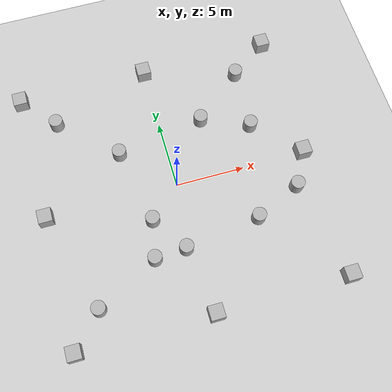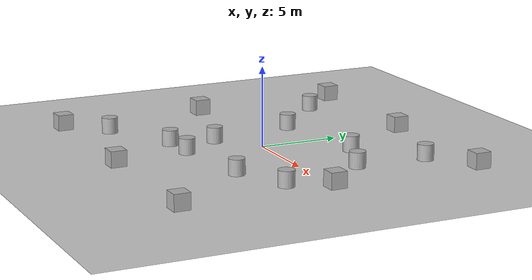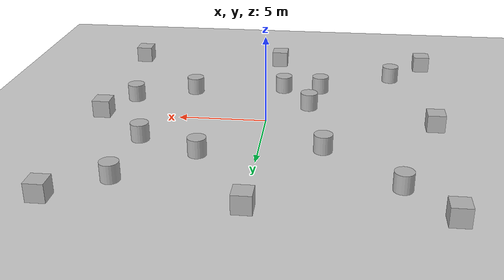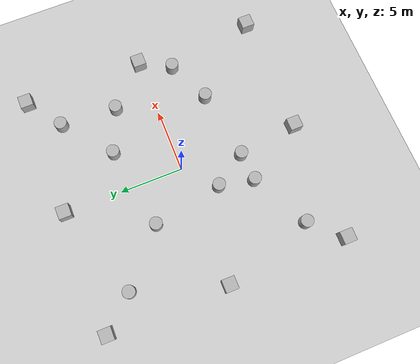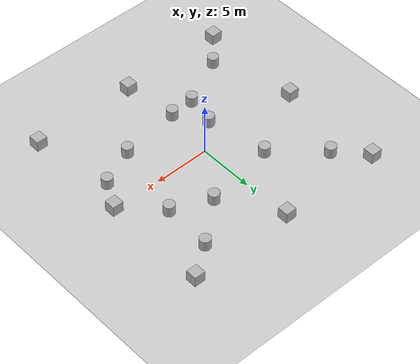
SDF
<sdf version='1.10'>
  <world name='empty'>
    <physics name='1ms' type='ignored'>
      <max_step_size>0.001</max_step_size>
      <real_time_factor>1</real_time_factor>
      <real_time_update_rate>1000</real_time_update_rate>
    </physics>
    <plugin name='gz::sim::systems::Physics' filename='gz-sim-physics-system'/>
    <plugin name='gz::sim::systems::UserCommands' filename='gz-sim-user-commands-system'/>
    <plugin name='gz::sim::systems::SceneBroadcaster' filename='gz-sim-scene-broadcaster-system'/>
    <plugin name='gz::sim::systems::Contact' filename='gz-sim-contact-system'/>
    <gravity>0 0 -9.8000000000000007</gravity>
    <magnetic_field>5.5644999999999998e-06 2.2875799999999999e-05 -4.2388400000000002e-05</magnetic_field>
    <atmosphere type='adiabatic'/>
    <scene>
      <ambient>0.400000006 0.400000006 0.400000006 1</ambient>
      <background>0.699999988 0.699999988 0.699999988 1</background>
      <shadows>true</shadows>
    </scene>
    <model name='ground_plane'>
      <static>true</static>
      <link name='link'>
        <collision name='collision'>
          <geometry>
            <plane>
              <normal>0 0 1</normal>
              <size>100 100</size>
            </plane>
          </geometry>
          <surface>
            <friction>
              <ode/>
            </friction>
            <bounce/>
            <contact/>
          </surface>
        </collision>
        <visual name='visual'>
          <geometry>
            <plane>
              <normal>0 0 1</normal>
              <size>100 100</size>
            </plane>
          </geometry>
          <material>
            <ambient>0.800000012 0.800000012 0.800000012 1</ambient>
            <diffuse>0.800000012 0.800000012 0.800000012 1</diffuse>
            <specular>0.800000012 0.800000012 0.800000012 1</specular>
          </material>
        </visual>
        <pose>0 0 0 0 0 0</pose>
        <inertial>
          <pose>0 0 0 0 0 0</pose>
          <mass>1</mass>
          <inertia>
            <ixx>1</ixx>
            <ixy>0</ixy>
            <ixz>0</ixz>
            <iyy>1</iyy>
            <iyz>0</iyz>
            <izz>1</izz>
          </inertia>
        </inertial>
        <enable_wind>false</enable_wind>
      </link>
      <pose>0 0 0 0 0 0</pose>
      <self_collide>false</self_collide>
    </model>
    <model name='box'>
      <pose>-9.5105104446411133 -9.4715080261230469 0.4999999901996276 5.7452158753203952e-18 -4.87745509865517e-17 8.8289619633182297e-18</pose>
      <link name='box_link'>
        <inertial>
          <inertia>
            <ixx>0.16666</ixx>
            <ixy>0</ixy>
            <ixz>0</ixz>
            <iyy>0.16666</iyy>
            <iyz>0</iyz>
            <izz>0.16666</izz>
          </inertia>
          <mass>1</mass>
          <pose>0 0 0 0 0 0</pose>
        </inertial>
        <collision name='box_collision'>
          <geometry>
            <box>
              <size>1 1 1</size>
            </box>
          </geometry>
          <surface>
            <friction>
              <ode/>
            </friction>
            <bounce/>
            <contact/>
          </surface>
        </collision>
        <visual name='box_visual'>
          <geometry>
            <box>
              <size>1 1 1</size>
            </box>
          </geometry>
          <material>
            <ambient>0.300000012 0.300000012 0.300000012 1</ambient>
            <diffuse>0.699999988 0.699999988 0.699999988 1</diffuse>
            <specular>1 1 1 1</specular>
          </material>
        </visual>
        <pose>0 0 0 0 0 0</pose>
        <enable_wind>false</enable_wind>
      </link>
      <static>false</static>
      <self_collide>false</self_collide>
    </model>
    <model name='box_0'>
      <pose>-9.5 9.5 0.49999999990199806 6.2287739151293738e-22 9.3279666454713669e-22 -3.6315533669320137e-22</pose>
      <link name='box_link'>
        <inertial>
          <inertia>
            <ixx>0.16666</ixx>
            <ixy>0</ixy>
            <ixz>0</ixz>
            <iyy>0.16666</iyy>
            <iyz>0</iyz>
            <izz>0.16666</izz>
          </inertia>
          <mass>1</mass>
          <pose>0 0 0 0 0 0</pose>
        </inertial>
        <collision name='box_collision'>
          <geometry>
            <box>
              <size>1 1 1</size>
            </box>
          </geometry>
          <surface>
            <friction>
              <ode/>
            </friction>
            <bounce/>
            <contact/>
          </surface>
        </collision>
        <visual name='box_visual'>
          <geometry>
            <box>
              <size>1 1 1</size>
            </box>
          </geometry>
          <material>
            <ambient>0.300000012 0.300000012 0.300000012 1</ambient>
            <diffuse>0.699999988 0.699999988 0.699999988 1</diffuse>
            <specular>1 1 1 1</specular>
          </material>
        </visual>
        <pose>0 0 0 0 0 0</pose>
        <enable_wind>false</enable_wind>
      </link>
      <static>false</static>
      <self_collide>false</self_collide>
    </model>
    <model name='box_1'>
      <pose>9.4992166752738481 9.4980615737506326 0.49999999019962671 3.9205010342579368e-18 -5.0675675049605318e-17 1.3564869880834598e-17</pose>
      <link name='box_link'>
        <inertial>
          <inertia>
            <ixx>0.16666</ixx>
            <ixy>0</ixy>
            <ixz>0</ixz>
            <iyy>0.16666</iyy>
            <iyz>0</iyz>
            <izz>0.16666</izz>
          </inertia>
          <mass>1</mass>
          <pose>0 0 0 0 0 0</pose>
        </inertial>
        <collision name='box_collision'>
          <geometry>
            <box>
              <size>1 1 1</size>
            </box>
          </geometry>
          <surface>
            <friction>
              <ode/>
            </friction>
            <bounce/>
            <contact/>
          </surface>
        </collision>
        <visual name='box_visual'>
          <geometry>
            <box>
              <size>1 1 1</size>
            </box>
          </geometry>
          <material>
            <ambient>0.300000012 0.300000012 0.300000012 1</ambient>
            <diffuse>0.699999988 0.699999988 0.699999988 1</diffuse>
            <specular>1 1 1 1</specular>
          </material>
        </visual>
        <pose>0 0 0 0 0 0</pose>
        <enable_wind>false</enable_wind>
      </link>
      <static>false</static>
      <self_collide>false</self_collide>
    </model>
    <model name='box_2'>
      <pose>9.5012753985589207 -9.4960582415918147 0.49999999019962582 1.6668269850995211e-17 -3.8233364356452227e-17 1.2993061559049666e-17</pose>
      <link name='box_link'>
        <inertial>
          <inertia>
            <ixx>0.16666</ixx>
            <ixy>0</ixy>
            <ixz>0</ixz>
            <iyy>0.16666</iyy>
            <iyz>0</iyz>
            <izz>0.16666</izz>
          </inertia>
          <mass>1</mass>
          <pose>0 0 0 0 0 0</pose>
        </inertial>
        <collision name='box_collision'>
          <geometry>
            <box>
              <size>1 1 1</size>
            </box>
          </geometry>
          <surface>
            <friction>
              <ode/>
            </friction>
            <bounce/>
            <contact/>
          </surface>
        </collision>
        <visual name='box_visual'>
          <geometry>
            <box>
              <size>1 1 1</size>
            </box>
          </geometry>
          <material>
            <ambient>0.300000012 0.300000012 0.300000012 1</ambient>
            <diffuse>0.699999988 0.699999988 0.699999988 1</diffuse>
            <specular>1 1 1 1</specular>
          </material>
        </visual>
        <pose>0 0 0 0 0 0</pose>
        <enable_wind>false</enable_wind>
      </link>
      <static>false</static>
      <self_collide>false</self_collide>
    </model>
    <model name='box_3'>
      <pose>-8.9277939523812131e-22 -9.5 0.49999999990199806 6.2287739151293738e-22 9.3279666454713669e-22 -3.6315533669320137e-22</pose>
      <link name='box_link'>
        <inertial>
          <inertia>
            <ixx>0.16666</ixx>
            <ixy>0</ixy>
            <ixz>0</ixz>
            <iyy>0.16666</iyy>
            <iyz>0</iyz>
            <izz>0.16666</izz>
          </inertia>
          <mass>1</mass>
          <pose>0 0 0 0 0 0</pose>
        </inertial>
        <collision name='box_collision'>
          <geometry>
            <box>
              <size>1 1 1</size>
            </box>
          </geometry>
          <surface>
            <friction>
              <ode/>
            </friction>
            <bounce/>
            <contact/>
          </surface>
        </collision>
        <visual name='box_visual'>
          <geometry>
            <box>
              <size>1 1 1</size>
            </box>
          </geometry>
          <material>
            <ambient>0.300000012 0.300000012 0.300000012 1</ambient>
            <diffuse>0.699999988 0.699999988 0.699999988 1</diffuse>
            <specular>1 1 1 1</specular>
          </material>
        </visual>
        <pose>0 0 0 0 0 0</pose>
        <enable_wind>false</enable_wind>
      </link>
      <static>false</static>
      <self_collide>false</self_collide>
    </model>
    <model name='box_4'>
      <pose>-8.9277939523812131e-22 9.5 0.49999999990199806 6.2287739151293738e-22 9.3279666454713669e-22 -3.6315533669320137e-22</pose>
      <link name='box_link'>
        <inertial>
          <inertia>
            <ixx>0.16666</ixx>
            <ixy>0</ixy>
            <ixz>0</ixz>
            <iyy>0.16666</iyy>
            <iyz>0</iyz>
            <izz>0.16666</izz>
          </inertia>
          <mass>1</mass>
          <pose>0 0 0 0 0 0</pose>
        </inertial>
        <collision name='box_collision'>
          <geometry>
            <box>
              <size>1 1 1</size>
            </box>
          </geometry>
          <surface>
            <friction>
              <ode/>
            </friction>
            <bounce/>
            <contact/>
          </surface>
        </collision>
        <visual name='box_visual'>
          <geometry>
            <box>
              <size>1 1 1</size>
            </box>
          </geometry>
          <material>
            <ambient>0.300000012 0.300000012 0.300000012 1</ambient>
            <diffuse>0.699999988 0.699999988 0.699999988 1</diffuse>
            <specular>1 1 1 1</specular>
          </material>
        </visual>
        <pose>0 0 0 0 0 0</pose>
        <enable_wind>false</enable_wind>
      </link>
      <static>false</static>
      <self_collide>false</self_collide>
    </model>
    <model name='box_5'>
      <pose>-9.5 -7.9047571251935682e-22 0.49999999990199806 6.2287739151293738e-22 9.3279666454713669e-22 -3.6315533669320137e-22</pose>
      <link name='box_link'>
        <inertial>
          <inertia>
            <ixx>0.16666</ixx>
            <ixy>0</ixy>
            <ixz>0</ixz>
            <iyy>0.16666</iyy>
            <iyz>0</iyz>
            <izz>0.16666</izz>
          </inertia>
          <mass>1</mass>
          <pose>0 0 0 0 0 0</pose>
        </inertial>
        <collision name='box_collision'>
          <geometry>
            <box>
              <size>1 1 1</size>
            </box>
          </geometry>
          <surface>
            <friction>
              <ode/>
            </friction>
            <bounce/>
            <contact/>
          </surface>
        </collision>
        <visual name='box_visual'>
          <geometry>
            <box>
              <size>1 1 1</size>
            </box>
          </geometry>
          <material>
            <ambient>0.300000012 0.300000012 0.300000012 1</ambient>
            <diffuse>0.699999988 0.699999988 0.699999988 1</diffuse>
            <specular>1 1 1 1</specular>
          </material>
        </visual>
        <pose>0 0 0 0 0 0</pose>
        <enable_wind>false</enable_wind>
      </link>
      <static>false</static>
      <self_collide>false</self_collide>
    </model>
    <model name='box_6'>
      <pose>9.5 -2.4117603784140021e-18 0.49999999019962682 5.0620763943341118e-18 -5.0058711784599265e-18 1.1943514800508757e-19</pose>
      <link name='box_link'>
        <inertial>
          <inertia>
            <ixx>0.16666</ixx>
            <ixy>0</ixy>
            <ixz>0</ixz>
            <iyy>0.16666</iyy>
            <iyz>0</iyz>
            <izz>0.16666</izz>
          </inertia>
          <mass>1</mass>
          <pose>0 0 0 0 0 0</pose>
        </inertial>
        <collision name='box_collision'>
          <geometry>
            <box>
              <size>1 1 1</size>
            </box>
          </geometry>
          <surface>
            <friction>
              <ode/>
            </friction>
            <bounce/>
            <contact/>
          </surface>
        </collision>
        <visual name='box_visual'>
          <geometry>
            <box>
              <size>1 1 1</size>
            </box>
          </geometry>
          <material>
            <ambient>0.300000012 0.300000012 0.300000012 1</ambient>
            <diffuse>0.699999988 0.699999988 0.699999988 1</diffuse>
            <specular>1 1 1 1</specular>
          </material>
        </visual>
        <pose>0 0 0 0 0 0</pose>
        <enable_wind>false</enable_wind>
      </link>
      <static>false</static>
      <self_collide>false</self_collide>
    </model>
    <model name='cylinder'>
      <pose>3.0863223624937248 4.482498459497954 0.49999999631413172 -1.2768804921028683e-18 -5.5515943177750417e-17 2.865764510556751e-17</pose>
      <link name='cylinder_link'>
        <inertial>
          <inertia>
            <ixx>0.14580000000000001</ixx>
            <ixy>0</ixy>
            <ixz>0</ixz>
            <iyy>0.14580000000000001</iyy>
            <iyz>0</iyz>
            <izz>0.125</izz>
          </inertia>
          <mass>1</mass>
          <pose>0 0 0 0 0 0</pose>
        </inertial>
        <collision name='cylinder_collision'>
          <geometry>
            <cylinder>
              <radius>0.5</radius>
              <length>1</length>
            </cylinder>
          </geometry>
          <surface>
            <friction>
              <ode/>
            </friction>
            <bounce/>
            <contact/>
          </surface>
        </collision>
        <visual name='cylinder_visual'>
          <geometry>
            <cylinder>
              <radius>0.5</radius>
              <length>1</length>
            </cylinder>
          </geometry>
          <material>
            <ambient>0.300000012 0.300000012 0.300000012 1</ambient>
            <diffuse>0.699999988 0.699999988 0.699999988 1</diffuse>
            <specular>1 1 1 1</specular>
          </material>
        </visual>
        <pose>0 0 0 0 0 0</pose>
        <enable_wind>false</enable_wind>
      </link>
      <static>false</static>
      <self_collide>false</self_collide>
    </model>
    <model name='cylinder_0'>
      <pose>-2.3539331855223891 -2.128896332560176 0.49999999631413172 -5.8443666291105162e-17 -6.0633800293367071e-17 3.7471314351188633e-17</pose>
      <link name='cylinder_link'>
        <inertial>
          <inertia>
            <ixx>0.14580000000000001</ixx>
            <ixy>0</ixy>
            <ixz>0</ixz>
            <iyy>0.14580000000000001</iyy>
            <iyz>0</iyz>
            <izz>0.125</izz>
          </inertia>
          <mass>1</mass>
          <pose>0 0 0 0 0 0</pose>
        </inertial>
        <collision name='cylinder_collision'>
          <geometry>
            <cylinder>
              <radius>0.5</radius>
              <length>1</length>
            </cylinder>
          </geometry>
          <surface>
            <friction>
              <ode/>
            </friction>
            <bounce/>
            <contact/>
          </surface>
        </collision>
        <visual name='cylinder_visual'>
          <geometry>
            <cylinder>
              <radius>0.5</radius>
              <length>1</length>
            </cylinder>
          </geometry>
          <material>
            <ambient>0.300000012 0.300000012 0.300000012 1</ambient>
            <diffuse>0.699999988 0.699999988 0.699999988 1</diffuse>
            <specular>1 1 1 1</specular>
          </material>
        </visual>
        <pose>0 0 0 0 0 0</pose>
        <enable_wind>false</enable_wind>
      </link>
      <static>false</static>
      <self_collide>false</self_collide>
    </model>
    <model name='cylinder_1'>
      <pose>-7.2832715490528059 6.9872590533573629 0.49999999631413172 1.2377412605906616e-16 -1.9810226897326607e-17 6.0974616097668237e-17</pose>
      <link name='cylinder_link'>
        <inertial>
          <inertia>
            <ixx>0.14580000000000001</ixx>
            <ixy>0</ixy>
            <ixz>0</ixz>
            <iyy>0.14580000000000001</iyy>
            <iyz>0</iyz>
            <izz>0.125</izz>
          </inertia>
          <mass>1</mass>
          <pose>0 0 0 0 0 0</pose>
        </inertial>
        <collision name='cylinder_collision'>
          <geometry>
            <cylinder>
              <radius>0.5</radius>
              <length>1</length>
            </cylinder>
          </geometry>
          <surface>
            <friction>
              <ode/>
            </friction>
            <bounce/>
            <contact/>
          </surface>
        </collision>
        <visual name='cylinder_visual'>
          <geometry>
            <cylinder>
              <radius>0.5</radius>
              <length>1</length>
            </cylinder>
          </geometry>
          <material>
            <ambient>0.300000012 0.300000012 0.300000012 1</ambient>
            <diffuse>0.699999988 0.699999988 0.699999988 1</diffuse>
            <specular>1 1 1 1</specular>
          </material>
        </visual>
        <pose>0 0 0 0 0 0</pose>
        <enable_wind>false</enable_wind>
      </link>
      <static>false</static>
      <self_collide>false</self_collide>
    </model>
    <model name='cylinder_2'>
      <pose>-3.3778949728493277 3.4019529734626346 0.49999999631413172 -1.9679446318752545e-17 5.670818375095803e-17 1.5956115768601766e-17</pose>
      <link name='cylinder_link'>
        <inertial>
          <inertia>
            <ixx>0.14580000000000001</ixx>
            <ixy>0</ixy>
            <ixz>0</ixz>
            <iyy>0.14580000000000001</iyy>
            <iyz>0</iyz>
            <izz>0.125</izz>
          </inertia>
          <mass>1</mass>
          <pose>0 0 0 0 0 0</pose>
        </inertial>
        <collision name='cylinder_collision'>
          <geometry>
            <cylinder>
              <radius>0.5</radius>
              <length>1</length>
            </cylinder>
          </geometry>
          <surface>
            <friction>
              <ode/>
            </friction>
            <bounce/>
            <contact/>
          </surface>
        </collision>
        <visual name='cylinder_visual'>
          <geometry>
            <cylinder>
              <radius>0.5</radius>
              <length>1</length>
            </cylinder>
          </geometry>
          <material>
            <ambient>0.300000012 0.300000012 0.300000012 1</ambient>
            <diffuse>0.699999988 0.699999988 0.699999988 1</diffuse>
            <specular>1 1 1 1</specular>
          </material>
        </visual>
        <pose>0 0 0 0 0 0</pose>
        <enable_wind>false</enable_wind>
      </link>
      <static>false</static>
      <self_collide>false</self_collide>
    </model>
    <model name='cylinder_3'>
      <pose>4.8242079335866883 -3.9338914593100283 0.49999999631413172 2.1140891543887585e-17 -5.5511548916463733e-17 4.4417557315631538e-17</pose>
      <link name='cylinder_link'>
        <inertial>
          <inertia>
            <ixx>0.14580000000000001</ixx>
            <ixy>0</ixy>
            <ixz>0</ixz>
            <iyy>0.14580000000000001</iyy>
            <iyz>0</iyz>
            <izz>0.125</izz>
          </inertia>
          <mass>1</mass>
          <pose>0 0 0 0 0 0</pose>
        </inertial>
        <collision name='cylinder_collision'>
          <geometry>
            <cylinder>
              <radius>0.5</radius>
              <length>1</length>
            </cylinder>
          </geometry>
          <surface>
            <friction>
              <ode/>
            </friction>
            <bounce/>
            <contact/>
          </surface>
        </collision>
        <visual name='cylinder_visual'>
          <geometry>
            <cylinder>
              <radius>0.5</radius>
              <length>1</length>
            </cylinder>
          </geometry>
          <material>
            <ambient>0.300000012 0.300000012 0.300000012 1</ambient>
            <diffuse>0.699999988 0.699999988 0.699999988 1</diffuse>
            <specular>1 1 1 1</specular>
          </material>
        </visual>
        <pose>0 0 0 0 0 0</pose>
        <enable_wind>false</enable_wind>
      </link>
      <static>false</static>
      <self_collide>false</self_collide>
    </model>
    <model name='cylinder_4'>
      <pose>-0.64852300437106969 -4.7120998332012558 0.49999999631413172 1.1024513953184391e-16 9.2042198110446378e-17 8.0900773495992115e-17</pose>
      <link name='cylinder_link'>
        <inertial>
          <inertia>
            <ixx>0.14580000000000001</ixx>
            <ixy>0</ixy>
            <ixz>0</ixz>
            <iyy>0.14580000000000001</iyy>
            <iyz>0</iyz>
            <izz>0.125</izz>
          </inertia>
          <mass>1</mass>
          <pose>0 0 0 0 0 0</pose>
        </inertial>
        <collision name='cylinder_collision'>
          <geometry>
            <cylinder>
              <radius>0.5</radius>
              <length>1</length>
            </cylinder>
          </geometry>
          <surface>
            <friction>
              <ode/>
            </friction>
            <bounce/>
            <contact/>
          </surface>
        </collision>
        <visual name='cylinder_visual'>
          <geometry>
            <cylinder>
              <radius>0.5</radius>
              <length>1</length>
            </cylinder>
          </geometry>
          <material>
            <ambient>0.300000012 0.300000012 0.300000012 1</ambient>
            <diffuse>0.699999988 0.699999988 0.699999988 1</diffuse>
            <specular>1 1 1 1</specular>
          </material>
        </visual>
        <pose>0 0 0 0 0 0</pose>
        <enable_wind>false</enable_wind>
      </link>
      <static>false</static>
      <self_collide>false</self_collide>
    </model>
    <model name='cylinder_5'>
      <pose>-7.3594904968421426 -7.1417640118050807 0.49999999631413172 -6.1740233874883843e-17 5.5506998291933962e-17 1.1742036824496659e-17</pose>
      <link name='cylinder_link'>
        <inertial>
          <inertia>
            <ixx>0.14580000000000001</ixx>
            <ixy>0</ixy>
            <ixz>0</ixz>
            <iyy>0.14580000000000001</iyy>
            <iyz>0</iyz>
            <izz>0.125</izz>
          </inertia>
          <mass>1</mass>
          <pose>0 0 0 0 0 0</pose>
        </inertial>
        <collision name='cylinder_collision'>
          <geometry>
            <cylinder>
              <radius>0.5</radius>
              <length>1</length>
            </cylinder>
          </geometry>
          <surface>
            <friction>
              <ode/>
            </friction>
            <bounce/>
            <contact/>
          </surface>
        </collision>
        <visual name='cylinder_visual'>
          <geometry>
            <cylinder>
              <radius>0.5</radius>
              <length>1</length>
            </cylinder>
          </geometry>
          <material>
            <ambient>0.300000012 0.300000012 0.300000012 1</ambient>
            <diffuse>0.699999988 0.699999988 0.699999988 1</diffuse>
            <specular>1 1 1 1</specular>
          </material>
        </visual>
        <pose>0 0 0 0 0 0</pose>
        <enable_wind>false</enable_wind>
      </link>
      <static>false</static>
      <self_collide>false</self_collide>
    </model>
    <model name='cylinder_6'>
      <pose>-2.9168066073952224 -4.8549403016293784 0.49999999631413172 5.9819595742681323e-17 -2.0890136226486157e-17 6.7903952648702539e-18</pose>
      <link name='cylinder_link'>
        <inertial>
          <inertia>
            <ixx>0.14580000000000001</ixx>
            <ixy>0</ixy>
            <ixz>0</ixz>
            <iyy>0.14580000000000001</iyy>
            <iyz>0</iyz>
            <izz>0.125</izz>
          </inertia>
          <mass>1</mass>
          <pose>0 0 0 0 0 0</pose>
        </inertial>
        <collision name='cylinder_collision'>
          <geometry>
            <cylinder>
              <radius>0.5</radius>
              <length>1</length>
            </cylinder>
          </geometry>
          <surface>
            <friction>
              <ode/>
            </friction>
            <bounce/>
            <contact/>
          </surface>
        </collision>
        <visual name='cylinder_visual'>
          <geometry>
            <cylinder>
              <radius>0.5</radius>
              <length>1</length>
            </cylinder>
          </geometry>
          <material>
            <ambient>0.300000012 0.300000012 0.300000012 1</ambient>
            <diffuse>0.699999988 0.699999988 0.699999988 1</diffuse>
            <specular>1 1 1 1</specular>
          </material>
        </visual>
        <pose>0 0 0 0 0 0</pose>
        <enable_wind>false</enable_wind>
      </link>
      <static>false</static>
      <self_collide>false</self_collide>
    </model>
    <model name='cylinder_7'>
      <pose>8.2042360207934131 -2.4196457679138001 0.49999999631413172 6.0625146827930011e-17 4.688796451005351e-17 1.8283538485994582e-17</pose>
      <link name='cylinder_link'>
        <inertial>
          <inertia>
            <ixx>0.14580000000000001</ixx>
            <ixy>0</ixy>
            <ixz>0</ixz>
            <iyy>0.14580000000000001</iyy>
            <iyz>0</iyz>
            <izz>0.125</izz>
          </inertia>
          <mass>1</mass>
          <pose>0 0 0 0 0 0</pose>
        </inertial>
        <collision name='cylinder_collision'>
          <geometry>
            <cylinder>
              <radius>0.5</radius>
              <length>1</length>
            </cylinder>
          </geometry>
          <surface>
            <friction>
              <ode/>
            </friction>
            <bounce/>
            <contact/>
          </surface>
        </collision>
        <visual name='cylinder_visual'>
          <geometry>
            <cylinder>
              <radius>0.5</radius>
              <length>1</length>
            </cylinder>
          </geometry>
          <material>
            <ambient>0.300000012 0.300000012 0.300000012 1</ambient>
            <diffuse>0.699999988 0.699999988 0.699999988 1</diffuse>
            <specular>1 1 1 1</specular>
          </material>
        </visual>
        <pose>0 0 0 0 0 0</pose>
        <enable_wind>false</enable_wind>
      </link>
      <static>false</static>
      <self_collide>false</self_collide>
    </model>
    <model name='cylinder_8'>
      <pose>6.4928480122046324 3.0498260860412878 0.49999999631413172 6.3677411724818772e-17 -3.6478874829058929e-17 8.1040097404171554e-18</pose>
      <link name='cylinder_link'>
        <inertial>
          <inertia>
            <ixx>0.14580000000000001</ixx>
            <ixy>0</ixy>
            <ixz>0</ixz>
            <iyy>0.14580000000000001</iyy>
            <iyz>0</iyz>
            <izz>0.125</izz>
          </inertia>
          <mass>1</mass>
          <pose>0 0 0 0 0 0</pose>
        </inertial>
        <collision name='cylinder_collision'>
          <geometry>
            <cylinder>
              <radius>0.5</radius>
              <length>1</length>
            </cylinder>
          </geometry>
          <surface>
            <friction>
              <ode/>
            </friction>
            <bounce/>
            <contact/>
          </surface>
        </collision>
        <visual name='cylinder_visual'>
          <geometry>
            <cylinder>
              <radius>0.5</radius>
              <length>1</length>
            </cylinder>
          </geometry>
          <material>
            <ambient>0.300000012 0.300000012 0.300000012 1</ambient>
            <diffuse>0.699999988 0.699999988 0.699999988 1</diffuse>
            <specular>1 1 1 1</specular>
          </material>
        </visual>
        <pose>0 0 0 0 0 0</pose>
        <enable_wind>false</enable_wind>
      </link>
      <static>false</static>
      <self_collide>false</self_collide>
    </model>
    <model name='cylinder_9'>
      <pose>6.7498982362656896 7.5146214905093132 0.49999999631413172 5.822610374690102e-17 3.4710625189644663e-17 -5.1647676589048575e-18</pose>
      <link name='cylinder_link'>
        <inertial>
          <inertia>
            <ixx>0.14580000000000001</ixx>
            <ixy>0</ixy>
            <ixz>0</ixz>
            <iyy>0.14580000000000001</iyy>
            <iyz>0</iyz>
            <izz>0.125</izz>
          </inertia>
          <mass>1</mass>
          <pose>0 0 0 0 0 0</pose>
        </inertial>
        <collision name='cylinder_collision'>
          <geometry>
            <cylinder>
              <radius>0.5</radius>
              <length>1</length>
            </cylinder>
          </geometry>
          <surface>
            <friction>
              <ode/>
            </friction>
            <bounce/>
            <contact/>
          </surface>
        </collision>
        <visual name='cylinder_visual'>
          <geometry>
            <cylinder>
              <radius>0.5</radius>
              <length>1</length>
            </cylinder>
          </geometry>
          <material>
            <ambient>0.300000012 0.300000012 0.300000012 1</ambient>
            <diffuse>0.699999988 0.699999988 0.699999988 1</diffuse>
            <specular>1 1 1 1</specular>
          </material>
        </visual>
        <pose>0 0 0 0 0 0</pose>
        <enable_wind>false</enable_wind>
      </link>
      <static>false</static>
      <self_collide>false</self_collide>
    </model>
    <light name='sun' type='directional'>
      <pose>0 0 10 0 0 0</pose>
      <cast_shadows>true</cast_shadows>
      <intensity>1</intensity>
      <direction>-0.5 0.10000000000000001 -0.90000000000000002</direction>
      <diffuse>0.800000012 0.800000012 0.800000012 1</diffuse>
      <specular>0.200000003 0.200000003 0.200000003 1</specular>
      <attenuation>
        <range>1000</range>
        <linear>0.0099999997764825821</linear>
        <constant>0.89999997615814209</constant>
        <quadratic>0.0010000000474974513</quadratic>
      </attenuation>
      <spot>
        <inner_angle>0</inner_angle>
        <outer_angle>0</outer_angle>
        <falloff>0</falloff>
      </spot>
    </light>
  </world>
</sdf>
